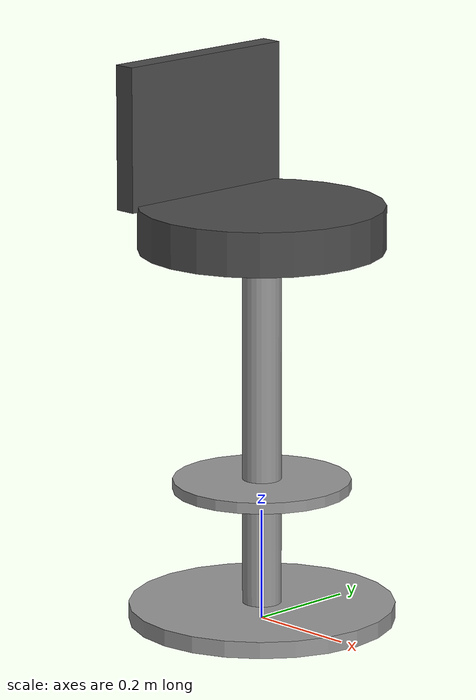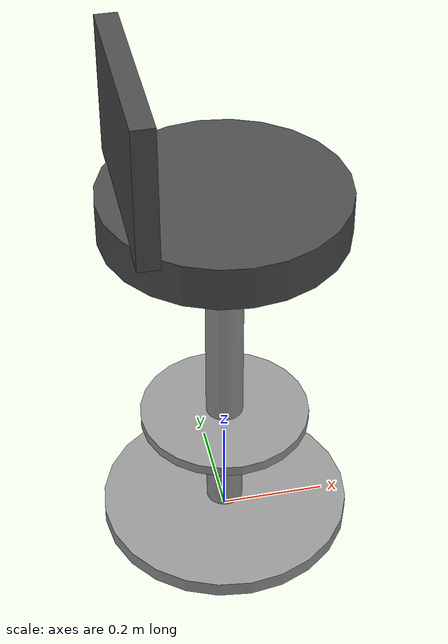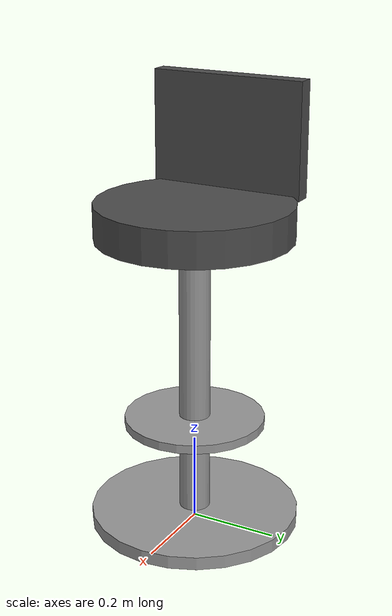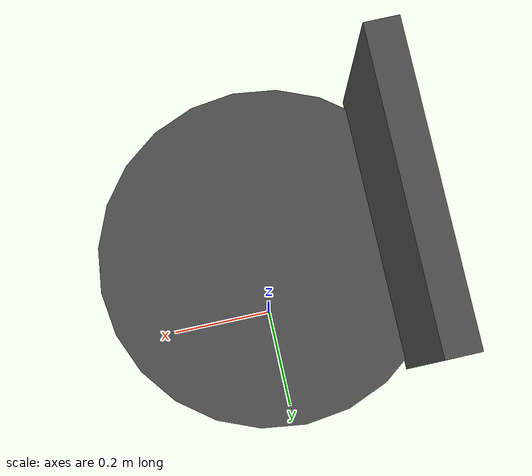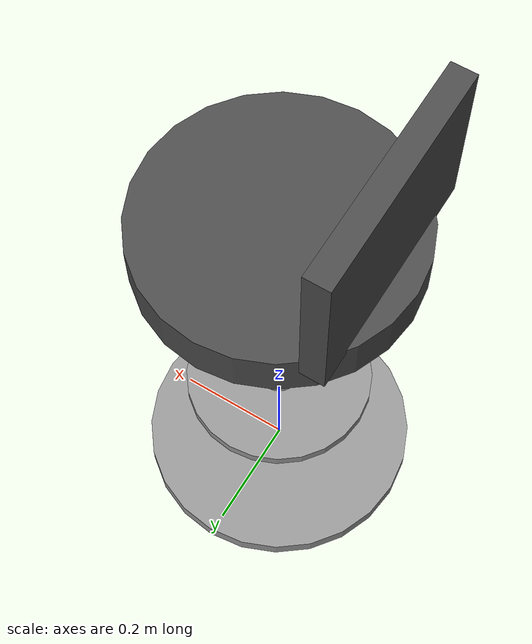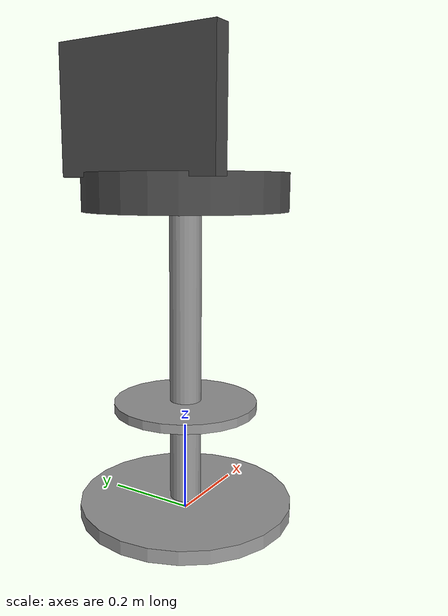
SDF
<?xml version="1.0" ?>
<sdf version="1.6">
  <model name="reception_high_chair">
    <static>true</static>
    <link name="chair_link">
      <!-- 1. Đế tròn kim loại dưới sàn -->
      <collision name="base_collision">
        <pose>0 0 0.015 0 0 0</pose>
        <geometry>
          <cylinder>
            <radius>0.24</radius>
            <length>0.03</length>
          </cylinder>
        </geometry>
      </collision>
      <visual name="base_visual">
        <pose>0 0 0.015 0 0 0</pose>
        <geometry>
          <cylinder>
            <radius>0.24</radius>
            <length>0.03</length>
          </cylinder>
        </geometry>
        <material>
          <script>
            <uri>file://media/materials/scripts/gazebo.material</uri>
            <name>Gazebo/Grey</name>
          </script>
        </material>
      </visual>

      <!-- 2. Trụ đỡ inox cao -->
      <collision name="pillar_collision">
        <pose>0 0 0.36 0 0 0</pose>
        <geometry>
          <cylinder>
            <radius>0.035</radius>
            <length>0.70</length>
          </cylinder>
        </geometry>
      </collision>
      <visual name="pillar_visual">
        <pose>0 0 0.36 0 0 0</pose>
        <geometry>
          <cylinder>
            <radius>0.035</radius>
            <length>0.70</length>
          </cylinder>
        </geometry>
        <material>
          <script>
            <uri>file://media/materials/scripts/gazebo.material</uri>
            <name>Gazebo/Grey</name>
          </script>
        </material>
      </visual>

      <!-- 3. Vòng kim loại gác chân -->
      <collision name="footrest_collision">
        <pose>0 0 0.25 0 0 0</pose>
        <geometry>
          <cylinder>
            <radius>0.16</radius>
            <length>0.02</length>
          </cylinder>
        </geometry>
      </collision>
      <visual name="footrest_visual">
        <pose>0 0 0.25 0 0 0</pose>
        <geometry>
          <cylinder>
            <radius>0.16</radius>
            <length>0.02</length>
          </cylinder>
        </geometry>
        <material>
          <script>
            <uri>file://media/materials/scripts/gazebo.material</uri>
            <name>Gazebo/Grey</name>
          </script>
        </material>
      </visual>

      <!-- 4. Đệm ngồi da êm ái cao 72cm -->
      <collision name="seat_collision">
        <pose>0 0 0.72 0 0 0</pose>
        <geometry>
          <cylinder>
            <radius>0.22</radius>
            <length>0.08</length>
          </cylinder>
        </geometry>
      </collision>
      <visual name="seat_visual">
        <pose>0 0 0.72 0 0 0</pose>
        <geometry>
          <cylinder>
            <radius>0.22</radius>
            <length>0.08</length>
          </cylinder>
        </geometry>
        <material>
          <script>
            <uri>file://media/materials/scripts/gazebo.material</uri>
            <name>Gazebo/DarkGrey</name>
          </script>
        </material>
      </visual>

      <!-- 5. Tựa lưng ghế cao -->
      <collision name="backrest_collision">
        <pose>-0.16 0 0.88 0 0 0</pose>
        <geometry>
          <box>
            <size>0.04 0.36 0.26</size>
          </box>
        </geometry>
      </collision>
      <visual name="backrest_visual">
        <pose>-0.16 0 0.88 0 0 0</pose>
        <geometry>
          <box>
            <size>0.04 0.36 0.26</size>
          </box>
        </geometry>
        <material>
          <script>
            <uri>file://media/materials/scripts/gazebo.material</uri>
            <name>Gazebo/DarkGrey</name>
          </script>
        </material>
      </visual>
    </link>
  </model>
</sdf>
